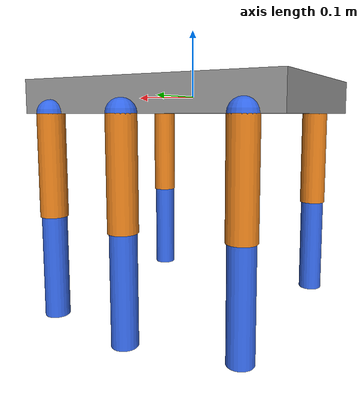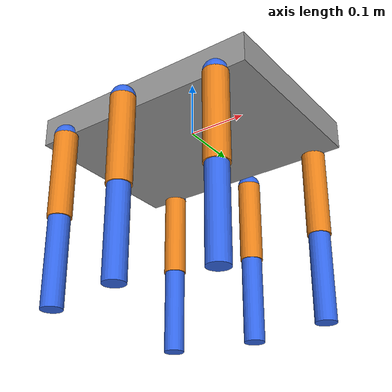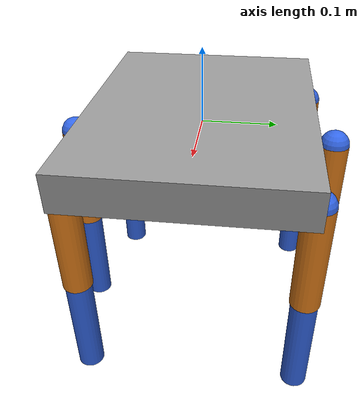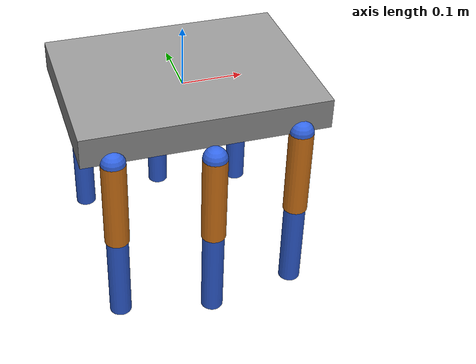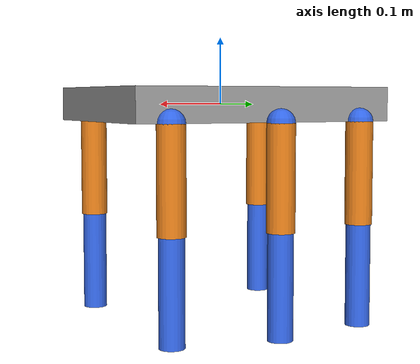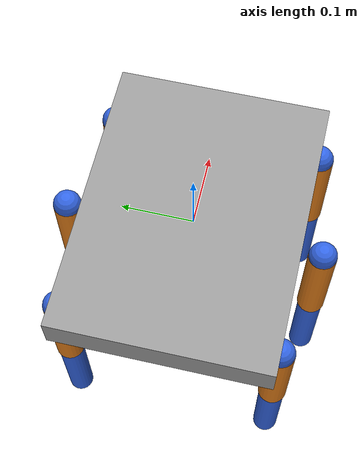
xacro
<?xml version="1.0"?>
<robot name="hexapod" xmlns:xacro="http://www.ros.org/wiki/xacro">

  <!-- properties -->
  <xacro:property name="body_length" value="0.4"/>
  <xacro:property name="body_width"  value="0.3"/>
  <xacro:property name="body_height" value="0.05"/>

  <xacro:property name="leg_length1" value="0.15"/>
  <xacro:property name="leg_length2" value="0.15"/>
  <xacro:property name="leg_radius"  value="0.02"/>

  <xacro:property name="body_mass" value="2.0"/>
  <xacro:property name="hip_mass"  value="0.05"/>
  <xacro:property name="thigh_mass" value="0.2"/>
  <xacro:property name="calf_mass"  value="0.15"/>

  <!-- materials -->
  <material name="gray">
    <color rgba="0.6 0.6 0.6 1.0"/>
  </material>

  <material name="blue">
    <color rgba="0.2 0.4 0.9 1.0"/>
  </material>

  <material name="orange">
    <color rgba="0.9 0.5 0.1 1.0"/>
  </material>

  <!-- BODY -->
  <link name="base_link">
    <visual>
      <geometry>
        <box size="${body_length} ${body_width} ${body_height}"/>
      </geometry>
      <material name="gray"/>
    </visual>

    <collision>
      <geometry>
        <box size="${body_length} ${body_width} ${body_height}"/>
      </geometry>
    </collision>

    <inertial>
      <origin xyz="0 0 0"/>
      <mass value="${body_mass}"/>
      <inertia
        ixx="0.02" ixy="0.0" ixz="0.0"
        iyy="0.03" iyz="0.0"
        izz="0.04"/>
    </inertial>
  </link>

  <!-- LEG MACRO -->
  <!-- params:
       name  : leg name
       x y   : mounting position
  -->
  <xacro:macro name="leg" params="name x y">

    <!-- hip link -->
    <link name="${name}_hip">
      <visual>
        <geometry>
          <sphere radius="0.02"/>
        </geometry>
        <material name="blue"/>
      </visual>

      <collision>
        <geometry>
          <sphere radius="0.02"/>
        </geometry>
      </collision>

      <inertial>
        <origin xyz="0 0 0"/>
        <mass value="${hip_mass}"/>
        <inertia
          ixx="0.0001" ixy="0.0" ixz="0.0"
          iyy="0.0001" iyz="0.0"
          izz="0.0001"/>
      </inertial>
    </link>

    <joint name="${name}_hip_yaw" type="revolute">
      <parent link="base_link"/>
      <child link="${name}_hip"/>
      <origin xyz="${x} ${y} -${body_height/2}" rpy="0 0 0"/>
      <axis xyz="0 0 1"/>
      <limit effort="10" velocity="10" lower="-1.57" upper="1.57"/>
      <dynamics damping="0.1" friction="0.05"/>
    </joint>

    <!-- thigh -->
    <link name="${name}_thigh">
      <visual>
        <origin xyz="0 0 -${leg_length1/2}" rpy="0 0 0"/>
        <geometry>
          <cylinder radius="${leg_radius}" length="${leg_length1}"/>
        </geometry>
        <material name="orange"/>
      </visual>

      <collision>
        <origin xyz="0 0 -${leg_length1/2}" rpy="0 0 0"/>
        <geometry>
          <cylinder radius="${leg_radius}" length="${leg_length1}"/>
        </geometry>
      </collision>

      <inertial>
        <origin xyz="0 0 -${leg_length1/2}"/>
        <mass value="${thigh_mass}"/>
        <inertia
          ixx="0.001" ixy="0.0" ixz="0.0"
          iyy="0.001" iyz="0.0"
          izz="0.0002"/>
      </inertial>
    </link>

    <joint name="${name}_hip_pitch" type="revolute">
      <parent link="${name}_hip"/>
      <child link="${name}_thigh"/>
      <origin xyz="0 0 0" rpy="0 0 0"/>
      <axis xyz="0 1 0"/>
      <limit effort="10" velocity="10" lower="-1.2" upper="1.2"/>
      <dynamics damping="0.1" friction="0.05"/>
    </joint>

    <!-- calf -->
    <link name="${name}_calf">
      <visual>
        <origin xyz="0 0 -${leg_length2/2}" rpy="0 0 0"/>
        <geometry>
          <cylinder radius="${leg_radius*0.9}" length="${leg_length2}"/>
        </geometry>
        <material name="blue"/>
      </visual>

      <collision>
        <origin xyz="0 0 -${leg_length2/2}" rpy="0 0 0"/>
        <geometry>
          <cylinder radius="${leg_radius*0.9}" length="${leg_length2}"/>
        </geometry>
      </collision>

      <inertial>
        <origin xyz="0 0 -${leg_length2/2}"/>
        <mass value="${calf_mass}"/>
        <inertia
          ixx="0.0008" ixy="0.0" ixz="0.0"
          iyy="0.0008" iyz="0.0"
          izz="0.00015"/>
      </inertial>
    </link>

    <joint name="${name}_knee" type="revolute">
      <parent link="${name}_thigh"/>
      <child link="${name}_calf"/>
      <origin xyz="0 0 -${leg_length1}" rpy="0 0 0"/>
      <axis xyz="0 1 0"/>
      <limit effort="10" velocity="10" lower="-2.0" upper="0.0"/>
      <dynamics damping="0.1" friction="0.05"/>
    </joint>

  </xacro:macro>

  <!-- 6 LEGS -->
  <xacro:leg name="leg1" x="0.15"  y="0.15"/>
  <xacro:leg name="leg2" x="0.15"  y="-0.15"/>
  <xacro:leg name="leg3" x="0.0"   y="0.18"/>
  <xacro:leg name="leg4" x="0.0"   y="-0.18"/>
  <xacro:leg name="leg5" x="-0.15" y="0.15"/>
  <xacro:leg name="leg6" x="-0.15" y="-0.15"/>

</robot>
